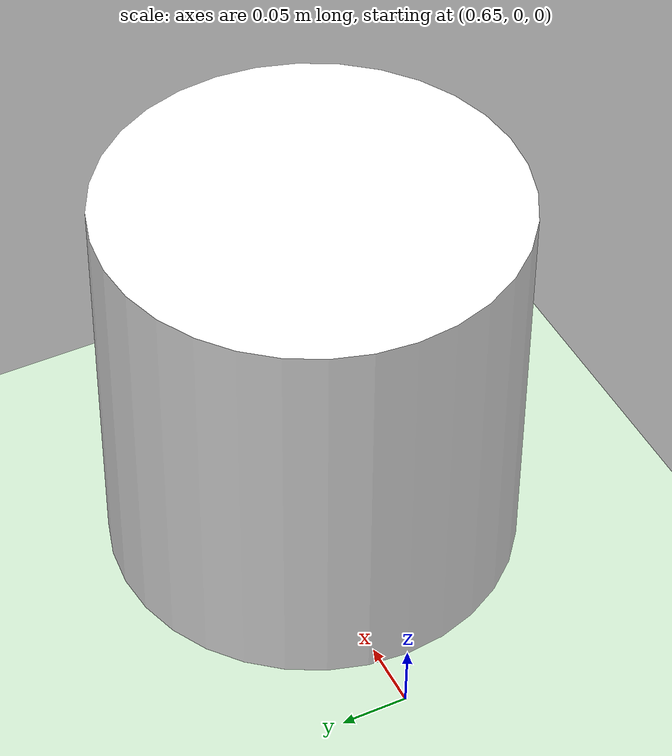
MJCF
<?xml version="1.0" encoding="utf-8"?>
<mujoco model="planar_gripper">
	<compiler angle="degree" coordinate="local" inertiafromgeom="true"/>
	<option integrator="RK4" timestep="0.01"/>
	<custom>
        <numeric name="init_qpos" data="0. 0.5 -0.6 0. -0.5 0.6"/>
	</custom>
	<default class="geom0">
		<joint armature="1" damping="1" limited="true"/>
		<geom conaffinity="1" contype="1" condim="3" density="5.0" friction="1 0.5 0.5" margin="0.001" rgba="0.8 0.6 0.4 1"/>
	</default>
	<asset>
		<texture builtin="gradient" height="100" rgb1="1 1 1" rgb2="0 0 0" type="skybox" width="100"/>
		<texture builtin="flat" height="1278" mark="cross" markrgb="1 1 1" name="texgeom" random="0.01" rgb1="0.8 0.6 0.4" rgb2="0.8 0.6 0.4" type="cube" width="127"/>
		<texture builtin="checker" height="100" name="texplane" rgb1="0 0 0" rgb2="0.8 0.8 0.8" type="2d" width="100"/>
		<material name="MatPlane" reflectance="0.5" shininess="1" specular="1" texrepeat="60 60" texture="texplane"/>
		<material name="geom" texture="texgeom" texuniform="true"/>
        <mesh name="Cylinder" file="cylinder.stl"/>
        <mesh name="CapsuleShort" file="capsule.stl"/>
        <mesh name="CapsuleLong" file="capsule-2.stl"/>
	</asset>
	<worldbody>
		<light cutoff="100" diffuse="1 1 1" dir="0 0 -1.3" directional="true" exponent="1" pos="0 0 1.3" specular="0.1 0.1 0.1"/>
		<geom conaffinity="1" condim="3" material="MatPlane" name="floor" pos="0 0 0" rgba="0.8 0.9 0.8 1" size="40 40 40" type="plane"/>
		<body name="root" pos="0 0 0">
			<camera mode="trackcom" name="track" pos="0 -3 0.3" xyaxes="1 0 0 0 0 1"/>
            <body name="object" pos="0.8 0 0.2" >
              <geom class="geom0" name="obj_com" rgba="1 1 1 0" type="sphere" size="0.08 0.08 0.08" density="5" contype="1" conaffinity="0"/>
              <geom class="geom0" name="obj_surface" rgba="1 1 1 1" type="mesh" mesh="Cylinder" size="1 1 1.5" density="5" contype="1" conaffinity="0"/>
              <joint name="goal_slidey" type="slide" pos="0 0 0" axis="0 1 0" range="-10.3213 10.3" damping="0.5"/>
              <joint name="goal_slidex" type="slide" pos="0 0 0" axis="1 0 0" range="-10.3213 10.3" damping="0.5"/>
              <joint name="obj_theta" type="hinge" pos="0 0 0" axis="0 0 1" range="-180 180" damping="0.5"/>
            </body>
		</body>
	</worldbody>
    <actuator>
        <motor ctrllimited="true" ctrlrange="-1.0 1.0" gear="150" joint="obj_slidey"/>
        <motor ctrllimited="true" ctrlrange="-1.0 1.0" gear="150" joint="obj_slidex"/>
		<motor ctrllimited="true" ctrlrange="-1.0 1.0" gear="150" joint="obj_theta"/>
    </actuator>
</mujoco>
